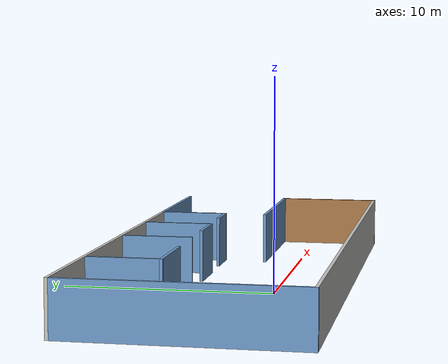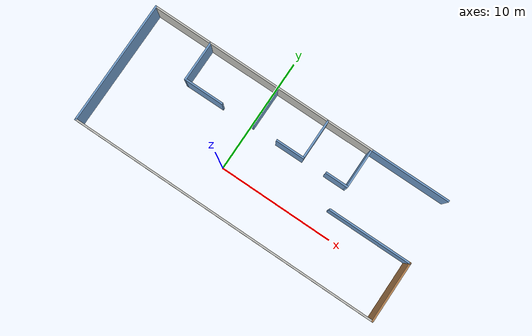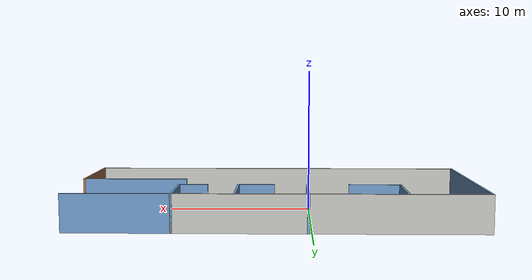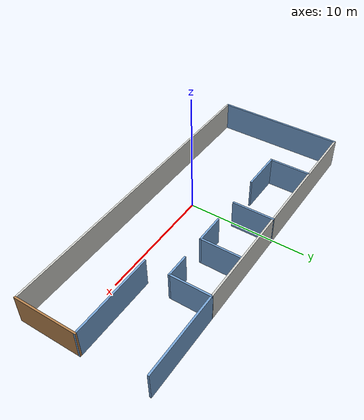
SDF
<?xml version='1.0'?>
<sdf version='1.6'>
  <model name='building'>
    <pose frame=''>2.34531 1.99591 0 0 -0 0</pose>
    <link name='Wall_10'>
      <collision name='Wall_10_Collision'>
        <geometry>
          <box>
            <size>2 0.15 2.5</size>
          </box>
        </geometry>
        <pose frame=''>0 0 1.25 0 -0 0</pose>
      </collision>
      <visual name='Wall_10_Visual'>
        <pose frame=''>0 0 1.25 0 -0 0</pose>
        <geometry>
          <box>
            <size>2 0.15 2.5</size>
          </box>
        </geometry>
        <material>
          <script>
            <uri>file://media/materials/scripts/gazebo.material</uri>
            <name>Gazebo/Grey</name>
          </script>
          <ambient>0.447059 0.623529 0.811765 1</ambient>
        </material>
        <meta>
          <layer>0</layer>
        </meta>
      </visual>
      <pose frame=''>5.49986 1.94581 0 0 -0 3.14159</pose>
    </link>
    <link name='Wall_12'>
      <collision name='Wall_12_Collision'>
        <geometry>
          <box>
            <size>3.5 0.15 2.5</size>
          </box>
        </geometry>
        <pose frame=''>0 0 1.25 0 -0 0</pose>
      </collision>
      <visual name='Wall_12_Visual'>
        <pose frame=''>0 0 1.25 0 -0 0</pose>
        <geometry>
          <box>
            <size>3.5 0.15 2.5</size>
          </box>
        </geometry>
        <material>
          <script>
            <uri>file://media/materials/scripts/gazebo.material</uri>
            <name>Gazebo/Grey</name>
          </script>
          <ambient>0.447059 0.623529 0.811765 1</ambient>
        </material>
        <meta>
          <layer>0</layer>
        </meta>
      </visual>
      <pose frame=''>2.4718 3.58334 0 0 -0 -1.5708</pose>
    </link>
    <link name='Wall_14'>
      <collision name='Wall_14_Collision'>
        <geometry>
          <box>
            <size>2.5 0.15 2.5</size>
          </box>
        </geometry>
        <pose frame=''>0 0 1.25 0 -0 0</pose>
      </collision>
      <visual name='Wall_14_Visual'>
        <pose frame=''>0 0 1.25 0 -0 0</pose>
        <geometry>
          <box>
            <size>2.5 0.15 2.5</size>
          </box>
        </geometry>
        <material>
          <script>
            <uri>file://media/materials/scripts/gazebo.material</uri>
            <name>Gazebo/Grey</name>
          </script>
          <ambient>0.447059 0.623529 0.811765 1</ambient>
        </material>
        <meta>
          <layer>0</layer>
        </meta>
      </visual>
      <pose frame=''>1.2968 1.90834 0 0 -0 3.14159</pose>
    </link>
    <link name='Wall_17'>
      <collision name='Wall_17_Collision'>
        <geometry>
          <box>
            <size>3.5 0.15 2.5</size>
          </box>
        </geometry>
        <pose frame=''>0 0 1.25 0 -0 0</pose>
      </collision>
      <visual name='Wall_17_Visual'>
        <pose frame=''>0 0 1.25 0 -0 0</pose>
        <geometry>
          <box>
            <size>3.5 0.15 2.5</size>
          </box>
        </geometry>
        <material>
          <script>
            <uri>file://media/materials/scripts/gazebo.material</uri>
            <name>Gazebo/Grey</name>
          </script>
          <ambient>0.447059 0.623529 0.811765 1</ambient>
        </material>
        <meta>
          <layer>0</layer>
        </meta>
      </visual>
      <pose frame=''>-2.10806 3.6296 0 0 -0 -1.5708</pose>
    </link>
    <link name='Wall_21'>
      <collision name='Wall_21_Collision'>
        <geometry>
          <box>
            <size>10.75 0.15 2.5</size>
          </box>
        </geometry>
        <pose frame=''>0 0 1.25 0 -0 0</pose>
      </collision>
      <visual name='Wall_21_Visual'>
        <pose frame=''>0 0 1.25 0 -0 0</pose>
        <geometry>
          <box>
            <size>10.75 0.15 2.5</size>
          </box>
        </geometry>
        <material>
          <script>
            <uri>file://media/materials/scripts/gazebo.material</uri>
            <name>Gazebo/Grey</name>
          </script>
          <ambient>0.447059 0.623529 0.811765 1</ambient>
        </material>
        <meta>
          <layer>0</layer>
        </meta>
      </visual>
      <pose frame=''>-13.425 -0.004602 0 0 -0 -1.5708</pose>
    </link>
    <link name='Wall_22'>
      <collision name='Wall_22_Collision'>
        <geometry>
          <box>
            <size>27 0.15 2.5</size>
          </box>
        </geometry>
        <pose frame=''>0 0 1.25 0 -0 0</pose>
      </collision>
      <visual name='Wall_22_Visual'>
        <pose frame=''>0 0 1.25 0 -0 0</pose>
        <geometry>
          <box>
            <size>27 0.15 2.5</size>
          </box>
        </geometry>
        <material>
          <script>
            <uri>file://media/materials/scripts/gazebo.material</uri>
            <name>Gazebo/CeilingTiled</name>
          </script>
          <ambient>0.447059 0.623529 0.811765 1</ambient>
        </material>
        <meta>
          <layer>0</layer>
        </meta>
      </visual>
      <pose frame=''>0 -5.3046 0 0 -0 0</pose>
    </link>
    <link name='Wall_23'>
      <collision name='Wall_23_Collision'>
        <geometry>
          <box>
            <size>5.25 0.15 2.5</size>
          </box>
        </geometry>
        <pose frame=''>0 0 1.25 0 -0 0</pose>
      </collision>
      <visual name='Wall_23_Visual'>
        <pose frame=''>0 0 1.25 0 -0 0</pose>
        <geometry>
          <box>
            <size>5.25 0.15 2.5</size>
          </box>
        </geometry>
        <material>
          <script>
            <uri>file://media/materials/scripts/gazebo.material</uri>
            <name>Gazebo/Wood</name>
          </script>
          <ambient>0.447059 0.623529 0.811765 1</ambient>
        </material>
        <meta>
          <layer>0</layer>
        </meta>
      </visual>
      <pose frame=''>13.425 -2.7546 0 0 -0 1.5708</pose>
    </link>
    <link name='Wall_25'>
      <collision name='Wall_25_Collision'>
        <geometry>
          <box>
            <size>7 0.15 2.5</size>
          </box>
        </geometry>
        <pose frame=''>0 0 1.25 0 -0 0</pose>
      </collision>
      <visual name='Wall_25_Visual'>
        <pose frame=''>0 0 1.25 0 -0 0</pose>
        <geometry>
          <box>
            <size>7 0.15 2.5</size>
          </box>
        </geometry>
        <material>
          <script>
            <uri>file://media/materials/scripts/gazebo.material</uri>
            <name>Gazebo/Grey</name>
          </script>
          <ambient>0.447059 0.623529 0.811765 1</ambient>
        </material>
        <meta>
          <layer>0</layer>
        </meta>
      </visual>
      <pose frame=''>9.84985 5.2958 0 0 -0 0</pose>
    </link>
    <link name='Wall_28'>
      <collision name='Wall_28_Collision'>
        <geometry>
          <box>
            <size>7.25 0.15 2.5</size>
          </box>
        </geometry>
        <pose frame=''>0 0 1.25 0 -0 0</pose>
      </collision>
      <visual name='Wall_28_Visual'>
        <pose frame=''>0 0 1.25 0 -0 0</pose>
        <geometry>
          <box>
            <size>7.25 0.15 2.5</size>
          </box>
        </geometry>
        <material>
          <script>
            <uri>file://media/materials/scripts/gazebo.material</uri>
            <name>Gazebo/Grey</name>
          </script>
          <ambient>0.447059 0.623529 0.811765 1</ambient>
        </material>
        <meta>
          <layer>0</layer>
        </meta>
      </visual>
      <pose frame=''>9.875 -0.204602 0 0 -0 3.14159</pose>
    </link>
    <link name='Wall_3'>
      <collision name='Wall_3_Collision'>
        <geometry>
          <box>
            <size>19.9999 0.15 2.5</size>
          </box>
        </geometry>
        <pose frame=''>0 0 1.25 0 -0 0</pose>
      </collision>
      <visual name='Wall_3_Visual'>
        <pose frame=''>0 0 1.25 0 -0 0</pose>
        <geometry>
          <box>
            <size>19.9999 0.15 2.5</size>
          </box>
        </geometry>
        <material>
          <script>
            <uri>file://media/materials/scripts/gazebo.material</uri>
            <name>Gazebo/CeilingTiled</name>
          </script>
          <ambient>0.447059 0.623529 0.811765 1</ambient>
        </material>
        <meta>
          <layer>0</layer>
        </meta>
      </visual>
      <pose frame=''>-3.50007 5.2956 0 0 -0 2e-05</pose>
    </link>
    <link name='Wall_30'>
      <collision name='Wall_30_Collision'>
        <geometry>
          <box>
            <size>3.5 0.15 2.5</size>
          </box>
        </geometry>
        <pose frame=''>0 0 1.25 0 -0 0</pose>
      </collision>
      <visual name='Wall_30_Visual'>
        <pose frame=''>0 0 1.25 0 -0 0</pose>
        <geometry>
          <box>
            <size>3.5 0.15 2.5</size>
          </box>
        </geometry>
        <material>
          <script>
            <uri>file://media/materials/scripts/gazebo.material</uri>
            <name>Gazebo/Grey</name>
          </script>
          <ambient>0.447059 0.623529 0.811765 1</ambient>
        </material>
        <meta>
          <layer>0</layer>
        </meta>
      </visual>
      <pose frame=''>-6.6321 1.90323 0 0 -0 3.14159</pose>
    </link>
    <link name='Wall_31'>
      <collision name='Wall_31_Collision'>
        <geometry>
          <box>
            <size>3.5 0.15 2.5</size>
          </box>
        </geometry>
        <pose frame=''>0 0 1.25 0 -0 0</pose>
      </collision>
      <visual name='Wall_31_Visual'>
        <pose frame=''>0 0 1.25 0 -0 0</pose>
        <geometry>
          <box>
            <size>3.5 0.15 2.5</size>
          </box>
        </geometry>
        <material>
          <script>
            <uri>file://media/materials/scripts/gazebo.material</uri>
            <name>Gazebo/Grey</name>
          </script>
          <ambient>0.447059 0.623529 0.811765 1</ambient>
        </material>
        <meta>
          <layer>0</layer>
        </meta>
      </visual>
      <pose frame=''>-8.3071 3.57823 0 0 -0 1.5708</pose>
    </link>
    <link name='Wall_9'>
      <collision name='Wall_9_Collision'>
        <geometry>
          <box>
            <size>3.5 0.15 2.5</size>
          </box>
        </geometry>
        <pose frame=''>0 0 1.25 0 -0 0</pose>
      </collision>
      <visual name='Wall_9_Visual'>
        <pose frame=''>0 0 1.25 0 -0 0</pose>
        <geometry>
          <box>
            <size>3.5 0.15 2.5</size>
          </box>
        </geometry>
        <material>
          <script>
            <uri>file://media/materials/scripts/gazebo.material</uri>
            <name>Gazebo/Grey</name>
          </script>
          <ambient>0.447059 0.623529 0.811765 1</ambient>
        </material>
        <meta>
          <layer>0</layer>
        </meta>
      </visual>
      <pose frame=''>6.42485 3.6208 0 0 -0 -1.5708</pose>
    </link>
    <static>1</static>
  </model>
</sdf>
